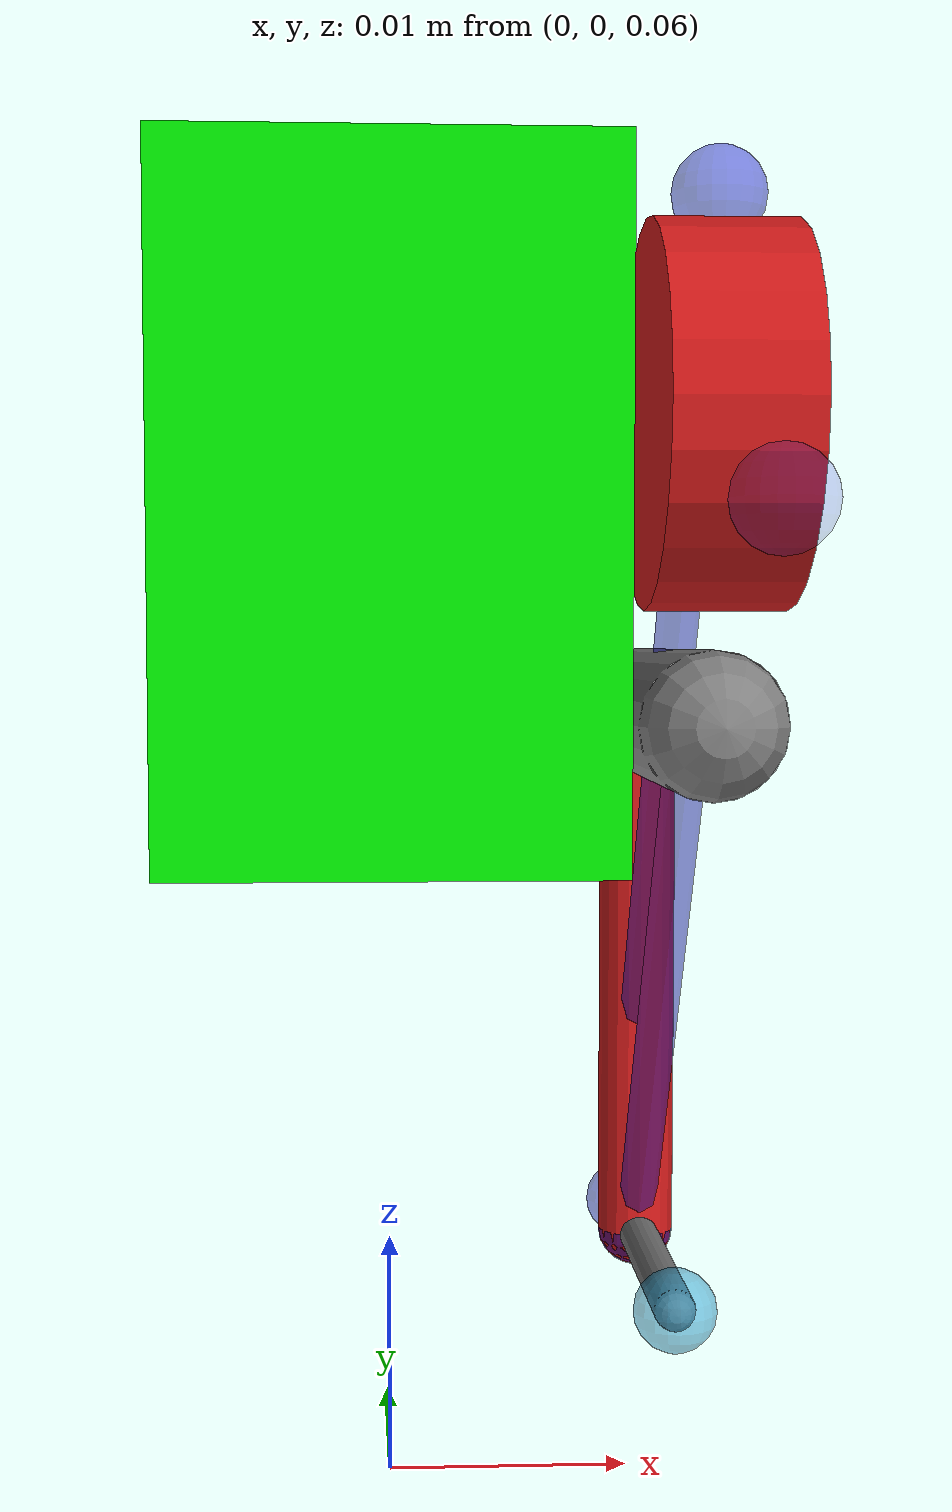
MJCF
<mujoco>

    <compiler angle="degree"/>

    <asset>
        <texture type="skybox" builtin="gradient" rgb1="1 1 1" rgb2=".6 .8 1" width="256" height="256"/>
    </asset>

    <!-- IMPORTANT LEG PARAMETERS FOR MODELS -->
    <!-- lr0= 0.46, l1=0.025, l2=0.018, l3=0.028, l4=0.015, rp=0.008, d1=0.0218 -->

    <worldbody>
        <light diffuse=".5 .5 .5" pos="0 0 3" dir="0 0 -1"/>
        <geom type="plane" size="0.1 .1 0.03" rgba=".9 0 0 1"/>
        <body pos="0 0.0055 0.1">
            <geom name="main_box" mass=".040" type="box" size=".0091 .014 .014" rgba="0 .9 0 1"/>

            <camera name="body_cam" mode="fixed" pos="0.2 -0.01 0" euler="90 90 0"/>
            <!-- Extension with slider for jumping -->
            <!-- joint name="rail" type="slide" axis="0 0 1"/ -->
            <joint name="rail" type="slide" axis="0 0 1" damping="0.01" frictionloss="0.01" pos="0 -0.03325 0"/>
            <body name ="main_leg" pos="0.0136 -0.0055 -0.0085">

                <joint name="m1" pos="0 0 0" type="hinge" axis="1 0 0" damping="0.01" armature="0.00065" limited="true" range="-180 180" ref="90"/>
                <geom name="leg1" mass="0.001" type="capsule" fromto="0 0 0 0 0.025 0" size="0.0032"/>
                <site name="knee_start" pos="0 0.0068 0" size="0.002" rgba=".1 .1 .8 0.5"/>
                <body name="lower_leg" pos="0 0.025 0">
                    <joint name="knee1" pos="0 0 0" type="hinge" axis="1 0 0" damping="0.01" armature="0.00065" limited="true" range="-90 90" />
                    <geom name="leg2" type="capsule" mass="0.0015" fromto="0 0 0 0 0 -0.028" size="0.002" rgba=".8 .1 .1 1"/>
                    <site name="m2_pickup" pos="0 0 -0.018" size="0.002" rgba=".1 .1 .8 0.5"/>
                    <site name="knee_pickup" pos="0 0 -0.028" size="0.002" rgba=".1 .1 .8 0.5"/>
                    <site name="ankle_start" pos="0 0 -0.010" size="0.002" rgba=".1 .1 .8 0.5"/>
                    <body name="foot" pos="0 0 -0.028">
                        <joint name="ankle" pos="0 0 0" type="hinge" axis="1 0 0" damping="0.01" stiffness="100" armature="0.00065" limited="true" range="-90 70" ref="-73"/>
                        <geom name="foot1" type="capsule" mass="0.001" fromto="0 -0.015 0 0 0.006 0" size="0.001"/>
                        <site name="ankle_pickup" pos="0 0.006 0" size="0.002" rgba=".1 .1 .8 0.5"/>
                        <site name="end_point" pos="0 -0.015 0" size="0.002" rgba=".1 .6 .8 0.5"/>
                    </body>
                </body>
            </body>

            <site name="x1" pos="0.0136 -0.02 0.00" size="0.002" rgba=".1 .1 .8 0.2"/>
            <body name="servo2" pos="0.0136 -0.0055 0.0043">
                <geom name="motor2" type="cylinder" mass="0.002" fromto="-0.003 0 0 0.003 0 0" size="0.008" rgba=".8 .1 .1 1" />
                <joint name="m2" pos="0 0 0" type="hinge" axis="1 0 0" armature="0.00065" damping="0.01" limited="true" range="-180 180"/>

                <site name="s1" pos="0.0 0 0.009" size="0.002" rgba=".1 .1 .8 0.5"/>
            </body>
        </body>
    </worldbody>

    <contact>
        <exclude body1="main_leg" body2="servo2"/>
    </contact>

    <tendon>
        <spatial name="m2_tendon" limited="true" range="0 0.0587" width="0.001" rgba=".1 .1 .8 0.5">
            <site site="s1"/>
            <geom geom="motor2" sidesite="x1"/>
            <site site="m2_pickup"/>
        </spatial>

        <!-- adjust the stiffness values of these springs -->
        <spatial name="knee_tendon" springlength="0.05" stiffness="600" width="0.001" rgba=".1 .1 .8 0.5">
            <site site="knee_start"/>
            <site site="knee_pickup"/>
        </spatial>

    </tendon>

    <sensor>
        <!-- tendonpos name="tendon_length" tendon="m2_tendon"/-->
        <!-- framepos name="leg_endpoint" objtype="site" objname="end_point"/-->
        <jointpos name="m1" joint="m1"/>
        <jointpos name="m2" joint="m2"/>
    </sensor>

    <actuator>
        <position name="m1" gear="1" ctrllimited="true" ctrlrange="-3.00 3.00"  forcelimited="true" forcerange="-0.157 0.157" joint="m1" kp="1000"/>
        <position name="m2" gear="1" ctrllimited="true"  ctrlrange="-3.00 3.00 " forcelimited="true" forcerange="-0.157 0.157" joint="m2" kp="1000"/>
    </actuator>
</mujoco>
